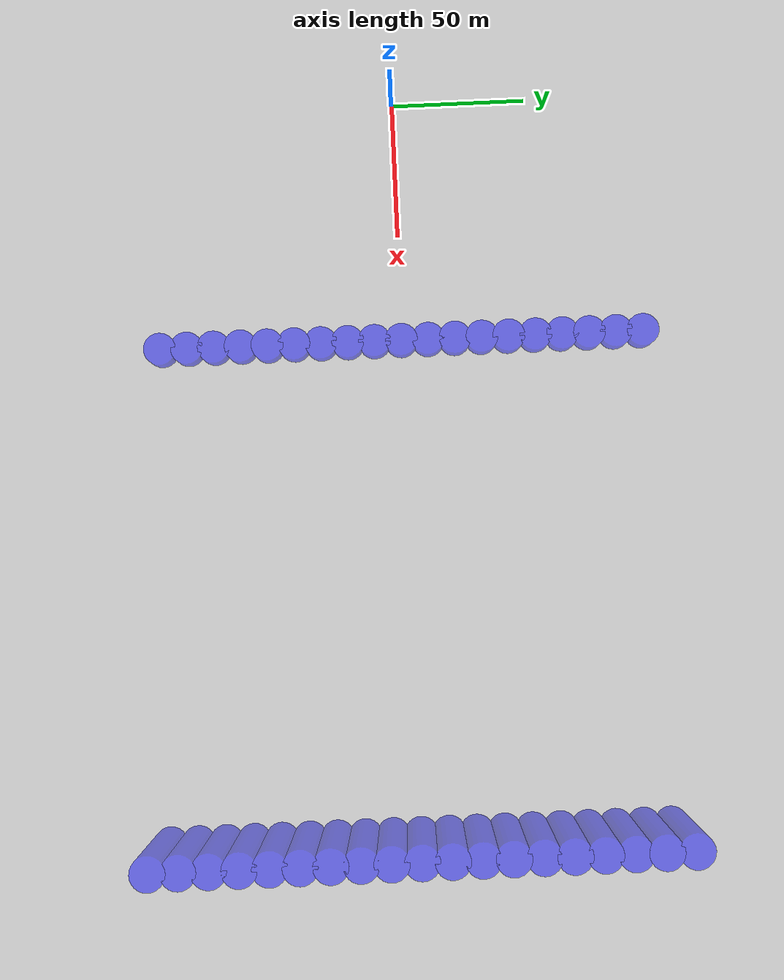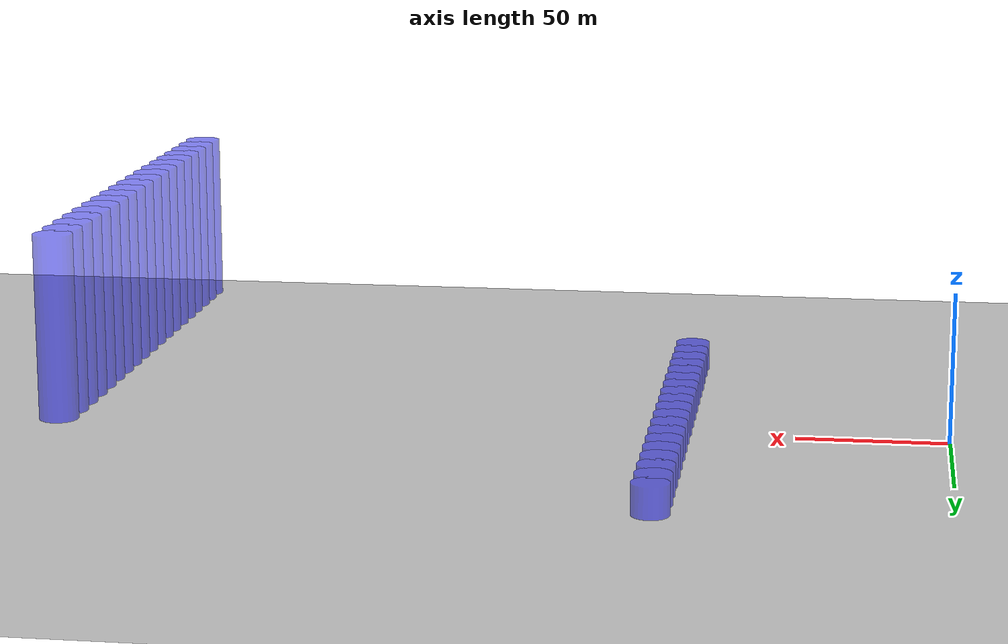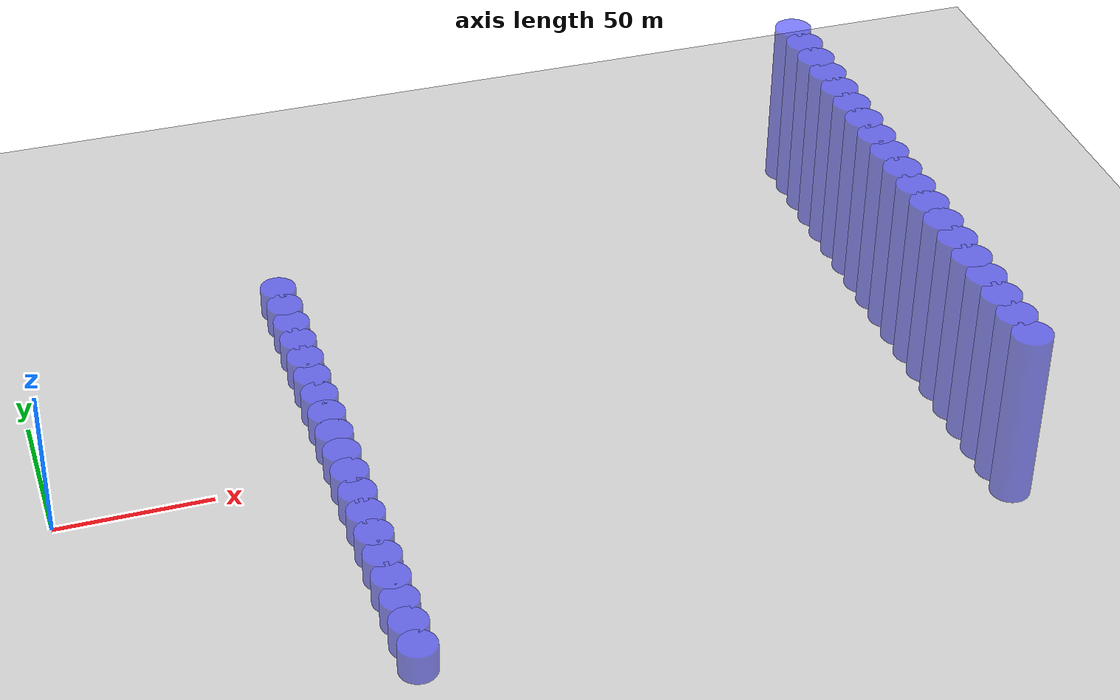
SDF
<sdf version="1.6">
 <world name="default">
  <model name="ground_plane">
   <static>1</static>
   <link name="link">
    <collision name="collision">
     <geometry><plane><normal>0 0 1</normal><size>100 100</size></plane></geometry>
     <surface><friction><ode><mu>100</mu><mu2>50</mu2></ode></friction></surface>
    </collision>
    <visual name="visual">
     <cast_shadows>0</cast_shadows>
     <geometry><plane><normal>0 0 1</normal><size>100 100</size></plane></geometry>
     <material>
      <script><uri>file://media/materials/scripts/gazebo.material</uri><name>Gazebo/Grey</name></script>
     </material>
    </visual>
   </link>
  </model>
  <model name="suav1">
   <link name="base_link">
    <inertial>
     <mass>0.1</mass>
     <inertia><ixx>1</ixx><ixy>0</ixy><ixz>0</ixz><iyy>1</iyy><iyz>0</iyz><izz>1</izz></inertia>
    </inertial>
    <collision name="base_link_fixed_joint_lump__body_link_collision">
     <geometry>
      <mesh>
       <scale>0.1 0.1 0.1</scale>
       <uri>package://simple_airplane_description/meshes/simple_airplane.dae</uri>
      </mesh>
     </geometry>
    </collision>
    <visual name="base_link_fixed_joint_lump__base_visual_visual">
     <geometry>
      <mesh>
       <scale>0.1 0.1 0.1</scale>
       <uri>package://simple_airplane_description/meshes/simple_airplane.dae</uri>
      </mesh>
     </geometry>
    </visual>
    <gravity>0</gravity>
    <gravity>0</gravity>
    <visual name="front_camera_housing">
     <pose>0 0 0.015 0 -0 0</pose>
     <geometry><box><size>0.04 0.05 0.04</size></box></geometry>
    </visual>
    <visual name="front_camera_lens">
     <pose>0.025 0 0.015 0 1.5708 0</pose>
     <geometry><cylinder><length>0.01</length><radius>0.012</radius></cylinder></geometry>
    </visual>
    <sensor name="front_camera" type="camera">
     <pose>0.03 0 0.015 0 0 0</pose>
     <always_on>true</always_on>
     <update_rate>15</update_rate>
     <visualize>false</visualize>
     <camera name="front_camera">
      <horizontal_fov>1.5707963267948966</horizontal_fov>
      <image><width>640</width><height>360</height><format>R8G8B8</format></image>
      <clip><near>0.05</near><far>300</far></clip>
     </camera>
     <plugin filename="libgazebo_ros_camera.so" name="front_camera_controller">
      <robotNamespace>/suav1</robotNamespace>
      <cameraName>front_camera</cameraName>
      <imageTopicName>image_raw</imageTopicName>
      <cameraInfoTopicName>camera_info</cameraInfoTopicName>
      <frameName>front_camera_optical_frame</frameName>
      <updateRate>15.0</updateRate>
     </plugin>
    </sensor>
   </link>
   <static>0</static>
   <plugin name="object_controller" filename="libgazebo_ros_planar_move_with_banking_and_pitching_plugin1.so">
    <commandTopic>cmd_vel</commandTopic>
    <odometryTopic>odom</odometryTopic>
    <odometryFrame>odom</odometryFrame>
    <odometryRate>80.0</odometryRate>
    <robotBaseFrame>base_link</robotBaseFrame>
    <robotNamespace>/suav1/</robotNamespace>
   </plugin>
   <pose>0.0 0.0 8.0 0.0 0.0 0.0</pose>
  </model>
  <model name="static_obs1">
   <static>true</static>
   <pose>90.0 -90.0 5.0 0 0 0</pose>
   <link name="link">
    <gravity>false</gravity>
    <collision name="collision">
     <geometry><cylinder><radius>6.0</radius><length>10.0</length></cylinder></geometry>
    </collision>
    <visual name="visual">
     <geometry><cylinder><radius>6.0</radius><length>10.0</length></cylinder></geometry>
     <material><ambient>0 0 1 1</ambient><diffuse>0 0 1 1</diffuse></material>
     <transparency>0.5</transparency>
    </visual>
   </link>
  </model>
  <model name="static_obs2">
   <static>true</static>
   <pose>90.0 -80.0 5.0 0 0 0</pose>
   <link name="link">
    <gravity>false</gravity>
    <collision name="collision">
     <geometry><cylinder><radius>6.0</radius><length>10.0</length></cylinder></geometry>
    </collision>
    <visual name="visual">
     <geometry><cylinder><radius>6.0</radius><length>10.0</length></cylinder></geometry>
     <material><ambient>0 0 1 1</ambient><diffuse>0 0 1 1</diffuse></material>
     <transparency>0.5</transparency>
    </visual>
   </link>
  </model>
  <model name="static_obs3">
   <static>true</static>
   <pose>90.0 -70.0 5.0 0 0 0</pose>
   <link name="link">
    <gravity>false</gravity>
    <collision name="collision">
     <geometry><cylinder><radius>6.0</radius><length>10.0</length></cylinder></geometry>
    </collision>
    <visual name="visual">
     <geometry><cylinder><radius>6.0</radius><length>10.0</length></cylinder></geometry>
     <material><ambient>0 0 1 1</ambient><diffuse>0 0 1 1</diffuse></material>
     <transparency>0.5</transparency>
    </visual>
   </link>
  </model>
  <model name="static_obs4">
   <static>true</static>
   <pose>90.0 -60.0 5.0 0 0 0</pose>
   <link name="link">
    <gravity>false</gravity>
    <collision name="collision">
     <geometry><cylinder><radius>6.0</radius><length>10.0</length></cylinder></geometry>
    </collision>
    <visual name="visual">
     <geometry><cylinder><radius>6.0</radius><length>10.0</length></cylinder></geometry>
     <material><ambient>0 0 1 1</ambient><diffuse>0 0 1 1</diffuse></material>
     <transparency>0.5</transparency>
    </visual>
   </link>
  </model>
  <model name="static_obs5">
   <static>true</static>
   <pose>90.0 -50.0 5.0 0 0 0</pose>
   <link name="link">
    <gravity>false</gravity>
    <collision name="collision">
     <geometry><cylinder><radius>6.0</radius><length>10.0</length></cylinder></geometry>
    </collision>
    <visual name="visual">
     <geometry><cylinder><radius>6.0</radius><length>10.0</length></cylinder></geometry>
     <material><ambient>0 0 1 1</ambient><diffuse>0 0 1 1</diffuse></material>
     <transparency>0.5</transparency>
    </visual>
   </link>
  </model>
  <model name="static_obs6">
   <static>true</static>
   <pose>90.0 -40.0 5.0 0 0 0</pose>
   <link name="link">
    <gravity>false</gravity>
    <collision name="collision">
     <geometry><cylinder><radius>6.0</radius><length>10.0</length></cylinder></geometry>
    </collision>
    <visual name="visual">
     <geometry><cylinder><radius>6.0</radius><length>10.0</length></cylinder></geometry>
     <material><ambient>0 0 1 1</ambient><diffuse>0 0 1 1</diffuse></material>
     <transparency>0.5</transparency>
    </visual>
   </link>
  </model>
  <model name="static_obs7">
   <static>true</static>
   <pose>90.0 -30.0 5.0 0 0 0</pose>
   <link name="link">
    <gravity>false</gravity>
    <collision name="collision">
     <geometry><cylinder><radius>6.0</radius><length>10.0</length></cylinder></geometry>
    </collision>
    <visual name="visual">
     <geometry><cylinder><radius>6.0</radius><length>10.0</length></cylinder></geometry>
     <material><ambient>0 0 1 1</ambient><diffuse>0 0 1 1</diffuse></material>
     <transparency>0.5</transparency>
    </visual>
   </link>
  </model>
  <model name="static_obs8">
   <static>true</static>
   <pose>90.0 -20.0 5.0 0 0 0</pose>
   <link name="link">
    <gravity>false</gravity>
    <collision name="collision">
     <geometry><cylinder><radius>6.0</radius><length>10.0</length></cylinder></geometry>
    </collision>
    <visual name="visual">
     <geometry><cylinder><radius>6.0</radius><length>10.0</length></cylinder></geometry>
     <material><ambient>0 0 1 1</ambient><diffuse>0 0 1 1</diffuse></material>
     <transparency>0.5</transparency>
    </visual>
   </link>
  </model>
  <model name="static_obs9">
   <static>true</static>
   <pose>90.0 -10.0 5.0 0 0 0</pose>
   <link name="link">
    <gravity>false</gravity>
    <collision name="collision">
     <geometry><cylinder><radius>6.0</radius><length>10.0</length></cylinder></geometry>
    </collision>
    <visual name="visual">
     <geometry><cylinder><radius>6.0</radius><length>10.0</length></cylinder></geometry>
     <material><ambient>0 0 1 1</ambient><diffuse>0 0 1 1</diffuse></material>
     <transparency>0.5</transparency>
    </visual>
   </link>
  </model>
  <model name="static_obs10">
   <static>true</static>
   <pose>90.0 0.0 5.0 0 0 0</pose>
   <link name="link">
    <gravity>false</gravity>
    <collision name="collision">
     <geometry><cylinder><radius>6.0</radius><length>10.0</length></cylinder></geometry>
    </collision>
    <visual name="visual">
     <geometry><cylinder><radius>6.0</radius><length>10.0</length></cylinder></geometry>
     <material><ambient>0 0 1 1</ambient><diffuse>0 0 1 1</diffuse></material>
     <transparency>0.5</transparency>
    </visual>
   </link>
  </model>
  <model name="static_obs11">
   <static>true</static>
   <pose>90.0 10.0 5.0 0 0 0</pose>
   <link name="link">
    <gravity>false</gravity>
    <collision name="collision">
     <geometry><cylinder><radius>6.0</radius><length>10.0</length></cylinder></geometry>
    </collision>
    <visual name="visual">
     <geometry><cylinder><radius>6.0</radius><length>10.0</length></cylinder></geometry>
     <material><ambient>0 0 1 1</ambient><diffuse>0 0 1 1</diffuse></material>
     <transparency>0.5</transparency>
    </visual>
   </link>
  </model>
  <model name="static_obs12">
   <static>true</static>
   <pose>90.0 20.0 5.0 0 0 0</pose>
   <link name="link">
    <gravity>false</gravity>
    <collision name="collision">
     <geometry><cylinder><radius>6.0</radius><length>10.0</length></cylinder></geometry>
    </collision>
    <visual name="visual">
     <geometry><cylinder><radius>6.0</radius><length>10.0</length></cylinder></geometry>
     <material><ambient>0 0 1 1</ambient><diffuse>0 0 1 1</diffuse></material>
     <transparency>0.5</transparency>
    </visual>
   </link>
  </model>
  <model name="static_obs13">
   <static>true</static>
   <pose>90.0 30.0 5.0 0 0 0</pose>
   <link name="link">
    <gravity>false</gravity>
    <collision name="collision">
     <geometry><cylinder><radius>6.0</radius><length>10.0</length></cylinder></geometry>
    </collision>
    <visual name="visual">
     <geometry><cylinder><radius>6.0</radius><length>10.0</length></cylinder></geometry>
     <material><ambient>0 0 1 1</ambient><diffuse>0 0 1 1</diffuse></material>
     <transparency>0.5</transparency>
    </visual>
   </link>
  </model>
  <model name="static_obs14">
   <static>true</static>
   <pose>90.0 40.0 5.0 0 0 0</pose>
   <link name="link">
    <gravity>false</gravity>
    <collision name="collision">
     <geometry><cylinder><radius>6.0</radius><length>10.0</length></cylinder></geometry>
    </collision>
    <visual name="visual">
     <geometry><cylinder><radius>6.0</radius><length>10.0</length></cylinder></geometry>
     <material><ambient>0 0 1 1</ambient><diffuse>0 0 1 1</diffuse></material>
     <transparency>0.5</transparency>
    </visual>
   </link>
  </model>
  <model name="static_obs15">
   <static>true</static>
   <pose>90.0 50.0 5.0 0 0 0</pose>
   <link name="link">
    <gravity>false</gravity>
    <collision name="collision">
     <geometry><cylinder><radius>6.0</radius><length>10.0</length></cylinder></geometry>
    </collision>
    <visual name="visual">
     <geometry><cylinder><radius>6.0</radius><length>10.0</length></cylinder></geometry>
     <material><ambient>0 0 1 1</ambient><diffuse>0 0 1 1</diffuse></material>
     <transparency>0.5</transparency>
    </visual>
   </link>
  </model>
  <model name="static_obs16">
   <static>true</static>
   <pose>90.0 60.0 5.0 0 0 0</pose>
   <link name="link">
    <gravity>false</gravity>
    <collision name="collision">
     <geometry><cylinder><radius>6.0</radius><length>10.0</length></cylinder></geometry>
    </collision>
    <visual name="visual">
     <geometry><cylinder><radius>6.0</radius><length>10.0</length></cylinder></geometry>
     <material><ambient>0 0 1 1</ambient><diffuse>0 0 1 1</diffuse></material>
     <transparency>0.5</transparency>
    </visual>
   </link>
  </model>
  <model name="static_obs17">
   <static>true</static>
   <pose>90.0 70.0 5.0 0 0 0</pose>
   <link name="link">
    <gravity>false</gravity>
    <collision name="collision">
     <geometry><cylinder><radius>6.0</radius><length>10.0</length></cylinder></geometry>
    </collision>
    <visual name="visual">
     <geometry><cylinder><radius>6.0</radius><length>10.0</length></cylinder></geometry>
     <material><ambient>0 0 1 1</ambient><diffuse>0 0 1 1</diffuse></material>
     <transparency>0.5</transparency>
    </visual>
   </link>
  </model>
  <model name="static_obs18">
   <static>true</static>
   <pose>90.0 80.0 5.0 0 0 0</pose>
   <link name="link">
    <gravity>false</gravity>
    <collision name="collision">
     <geometry><cylinder><radius>6.0</radius><length>10.0</length></cylinder></geometry>
    </collision>
    <visual name="visual">
     <geometry><cylinder><radius>6.0</radius><length>10.0</length></cylinder></geometry>
     <material><ambient>0 0 1 1</ambient><diffuse>0 0 1 1</diffuse></material>
     <transparency>0.5</transparency>
    </visual>
   </link>
  </model>
  <model name="static_obs19">
   <static>true</static>
   <pose>90.0 90.0 5.0 0 0 0</pose>
   <link name="link">
    <gravity>false</gravity>
    <collision name="collision">
     <geometry><cylinder><radius>6.0</radius><length>10.0</length></cylinder></geometry>
    </collision>
    <visual name="visual">
     <geometry><cylinder><radius>6.0</radius><length>10.0</length></cylinder></geometry>
     <material><ambient>0 0 1 1</ambient><diffuse>0 0 1 1</diffuse></material>
     <transparency>0.5</transparency>
    </visual>
   </link>
  </model>
  <model name="static_obs20">
   <static>true</static>
   <pose>270.0 -90.0 51.5 0 0 0</pose>
   <link name="link">
    <gravity>false</gravity>
    <collision name="collision">
     <geometry><cylinder><radius>6.0</radius><length>57.0</length></cylinder></geometry>
    </collision>
    <visual name="visual">
     <geometry><cylinder><radius>6.0</radius><length>57.0</length></cylinder></geometry>
     <material><ambient>0 0 1 1</ambient><diffuse>0 0 1 1</diffuse></material>
     <transparency>0.5</transparency>
    </visual>
   </link>
  </model>
  <model name="static_obs21">
   <static>true</static>
   <pose>270.0 -80.0 51.5 0 0 0</pose>
   <link name="link">
    <gravity>false</gravity>
    <collision name="collision">
     <geometry><cylinder><radius>6.0</radius><length>57.0</length></cylinder></geometry>
    </collision>
    <visual name="visual">
     <geometry><cylinder><radius>6.0</radius><length>57.0</length></cylinder></geometry>
     <material><ambient>0 0 1 1</ambient><diffuse>0 0 1 1</diffuse></material>
     <transparency>0.5</transparency>
    </visual>
   </link>
  </model>
  <model name="static_obs22">
   <static>true</static>
   <pose>270.0 -70.0 51.5 0 0 0</pose>
   <link name="link">
    <gravity>false</gravity>
    <collision name="collision">
     <geometry><cylinder><radius>6.0</radius><length>57.0</length></cylinder></geometry>
    </collision>
    <visual name="visual">
     <geometry><cylinder><radius>6.0</radius><length>57.0</length></cylinder></geometry>
     <material><ambient>0 0 1 1</ambient><diffuse>0 0 1 1</diffuse></material>
     <transparency>0.5</transparency>
    </visual>
   </link>
  </model>
  <model name="static_obs23">
   <static>true</static>
   <pose>270.0 -60.0 51.5 0 0 0</pose>
   <link name="link">
    <gravity>false</gravity>
    <collision name="collision">
     <geometry><cylinder><radius>6.0</radius><length>57.0</length></cylinder></geometry>
    </collision>
    <visual name="visual">
     <geometry><cylinder><radius>6.0</radius><length>57.0</length></cylinder></geometry>
     <material><ambient>0 0 1 1</ambient><diffuse>0 0 1 1</diffuse></material>
     <transparency>0.5</transparency>
    </visual>
   </link>
  </model>
  <model name="static_obs24">
   <static>true</static>
   <pose>270.0 -50.0 51.5 0 0 0</pose>
   <link name="link">
    <gravity>false</gravity>
    <collision name="collision">
     <geometry><cylinder><radius>6.0</radius><length>57.0</length></cylinder></geometry>
    </collision>
    <visual name="visual">
     <geometry><cylinder><radius>6.0</radius><length>57.0</length></cylinder></geometry>
     <material><ambient>0 0 1 1</ambient><diffuse>0 0 1 1</diffuse></material>
     <transparency>0.5</transparency>
    </visual>
   </link>
  </model>
  <model name="static_obs25">
   <static>true</static>
   <pose>270.0 -40.0 51.5 0 0 0</pose>
   <link name="link">
    <gravity>false</gravity>
    <collision name="collision">
     <geometry><cylinder><radius>6.0</radius><length>57.0</length></cylinder></geometry>
    </collision>
    <visual name="visual">
     <geometry><cylinder><radius>6.0</radius><length>57.0</length></cylinder></geometry>
     <material><ambient>0 0 1 1</ambient><diffuse>0 0 1 1</diffuse></material>
     <transparency>0.5</transparency>
    </visual>
   </link>
  </model>
  <model name="static_obs26">
   <static>true</static>
   <pose>270.0 -30.0 51.5 0 0 0</pose>
   <link name="link">
    <gravity>false</gravity>
    <collision name="collision">
     <geometry><cylinder><radius>6.0</radius><length>57.0</length></cylinder></geometry>
    </collision>
    <visual name="visual">
     <geometry><cylinder><radius>6.0</radius><length>57.0</length></cylinder></geometry>
     <material><ambient>0 0 1 1</ambient><diffuse>0 0 1 1</diffuse></material>
     <transparency>0.5</transparency>
    </visual>
   </link>
  </model>
  <model name="static_obs27">
   <static>true</static>
   <pose>270.0 -20.0 51.5 0 0 0</pose>
   <link name="link">
    <gravity>false</gravity>
    <collision name="collision">
     <geometry><cylinder><radius>6.0</radius><length>57.0</length></cylinder></geometry>
    </collision>
    <visual name="visual">
     <geometry><cylinder><radius>6.0</radius><length>57.0</length></cylinder></geometry>
     <material><ambient>0 0 1 1</ambient><diffuse>0 0 1 1</diffuse></material>
     <transparency>0.5</transparency>
    </visual>
   </link>
  </model>
  <model name="static_obs28">
   <static>true</static>
   <pose>270.0 -10.0 51.5 0 0 0</pose>
   <link name="link">
    <gravity>false</gravity>
    <collision name="collision">
     <geometry><cylinder><radius>6.0</radius><length>57.0</length></cylinder></geometry>
    </collision>
    <visual name="visual">
     <geometry><cylinder><radius>6.0</radius><length>57.0</length></cylinder></geometry>
     <material><ambient>0 0 1 1</ambient><diffuse>0 0 1 1</diffuse></material>
     <transparency>0.5</transparency>
    </visual>
   </link>
  </model>
  <model name="static_obs29">
   <static>true</static>
   <pose>270.0 0.0 51.5 0 0 0</pose>
   <link name="link">
    <gravity>false</gravity>
    <collision name="collision">
     <geometry><cylinder><radius>6.0</radius><length>57.0</length></cylinder></geometry>
    </collision>
    <visual name="visual">
     <geometry><cylinder><radius>6.0</radius><length>57.0</length></cylinder></geometry>
     <material><ambient>0 0 1 1</ambient><diffuse>0 0 1 1</diffuse></material>
     <transparency>0.5</transparency>
    </visual>
   </link>
  </model>
  <model name="static_obs30">
   <static>true</static>
   <pose>270.0 10.0 51.5 0 0 0</pose>
   <link name="link">
    <gravity>false</gravity>
    <collision name="collision">
     <geometry><cylinder><radius>6.0</radius><length>57.0</length></cylinder></geometry>
    </collision>
    <visual name="visual">
     <geometry><cylinder><radius>6.0</radius><length>57.0</length></cylinder></geometry>
     <material><ambient>0 0 1 1</ambient><diffuse>0 0 1 1</diffuse></material>
     <transparency>0.5</transparency>
    </visual>
   </link>
  </model>
  <model name="static_obs31">
   <static>true</static>
   <pose>270.0 20.0 51.5 0 0 0</pose>
   <link name="link">
    <gravity>false</gravity>
    <collision name="collision">
     <geometry><cylinder><radius>6.0</radius><length>57.0</length></cylinder></geometry>
    </collision>
    <visual name="visual">
     <geometry><cylinder><radius>6.0</radius><length>57.0</length></cylinder></geometry>
     <material><ambient>0 0 1 1</ambient><diffuse>0 0 1 1</diffuse></material>
     <transparency>0.5</transparency>
    </visual>
   </link>
  </model>
  <model name="static_obs32">
   <static>true</static>
   <pose>270.0 30.0 51.5 0 0 0</pose>
   <link name="link">
    <gravity>false</gravity>
    <collision name="collision">
     <geometry><cylinder><radius>6.0</radius><length>57.0</length></cylinder></geometry>
    </collision>
    <visual name="visual">
     <geometry><cylinder><radius>6.0</radius><length>57.0</length></cylinder></geometry>
     <material><ambient>0 0 1 1</ambient><diffuse>0 0 1 1</diffuse></material>
     <transparency>0.5</transparency>
    </visual>
   </link>
  </model>
  <model name="static_obs33">
   <static>true</static>
   <pose>270.0 40.0 51.5 0 0 0</pose>
   <link name="link">
    <gravity>false</gravity>
    <collision name="collision">
     <geometry><cylinder><radius>6.0</radius><length>57.0</length></cylinder></geometry>
    </collision>
    <visual name="visual">
     <geometry><cylinder><radius>6.0</radius><length>57.0</length></cylinder></geometry>
     <material><ambient>0 0 1 1</ambient><diffuse>0 0 1 1</diffuse></material>
     <transparency>0.5</transparency>
    </visual>
   </link>
  </model>
  <model name="static_obs34">
   <static>true</static>
   <pose>270.0 50.0 51.5 0 0 0</pose>
   <link name="link">
    <gravity>false</gravity>
    <collision name="collision">
     <geometry><cylinder><radius>6.0</radius><length>57.0</length></cylinder></geometry>
    </collision>
    <visual name="visual">
     <geometry><cylinder><radius>6.0</radius><length>57.0</length></cylinder></geometry>
     <material><ambient>0 0 1 1</ambient><diffuse>0 0 1 1</diffuse></material>
     <transparency>0.5</transparency>
    </visual>
   </link>
  </model>
  <model name="static_obs35">
   <static>true</static>
   <pose>270.0 60.0 51.5 0 0 0</pose>
   <link name="link">
    <gravity>false</gravity>
    <collision name="collision">
     <geometry><cylinder><radius>6.0</radius><length>57.0</length></cylinder></geometry>
    </collision>
    <visual name="visual">
     <geometry><cylinder><radius>6.0</radius><length>57.0</length></cylinder></geometry>
     <material><ambient>0 0 1 1</ambient><diffuse>0 0 1 1</diffuse></material>
     <transparency>0.5</transparency>
    </visual>
   </link>
  </model>
  <model name="static_obs36">
   <static>true</static>
   <pose>270.0 70.0 51.5 0 0 0</pose>
   <link name="link">
    <gravity>false</gravity>
    <collision name="collision">
     <geometry><cylinder><radius>6.0</radius><length>57.0</length></cylinder></geometry>
    </collision>
    <visual name="visual">
     <geometry><cylinder><radius>6.0</radius><length>57.0</length></cylinder></geometry>
     <material><ambient>0 0 1 1</ambient><diffuse>0 0 1 1</diffuse></material>
     <transparency>0.5</transparency>
    </visual>
   </link>
  </model>
  <model name="static_obs37">
   <static>true</static>
   <pose>270.0 80.0 51.5 0 0 0</pose>
   <link name="link">
    <gravity>false</gravity>
    <collision name="collision">
     <geometry><cylinder><radius>6.0</radius><length>57.0</length></cylinder></geometry>
    </collision>
    <visual name="visual">
     <geometry><cylinder><radius>6.0</radius><length>57.0</length></cylinder></geometry>
     <material><ambient>0 0 1 1</ambient><diffuse>0 0 1 1</diffuse></material>
     <transparency>0.5</transparency>
    </visual>
   </link>
  </model>
  <model name="static_obs38">
   <static>true</static>
   <pose>270.0 90.0 51.5 0 0 0</pose>
   <link name="link">
    <gravity>false</gravity>
    <collision name="collision">
     <geometry><cylinder><radius>6.0</radius><length>57.0</length></cylinder></geometry>
    </collision>
    <visual name="visual">
     <geometry><cylinder><radius>6.0</radius><length>57.0</length></cylinder></geometry>
     <material><ambient>0 0 1 1</ambient><diffuse>0 0 1 1</diffuse></material>
     <transparency>0.5</transparency>
    </visual>
   </link>
  </model>
 </world>
</sdf>
